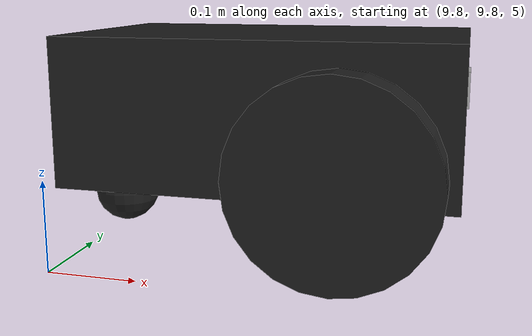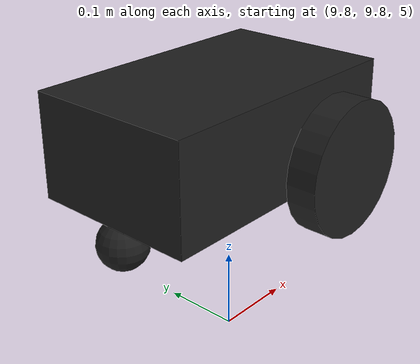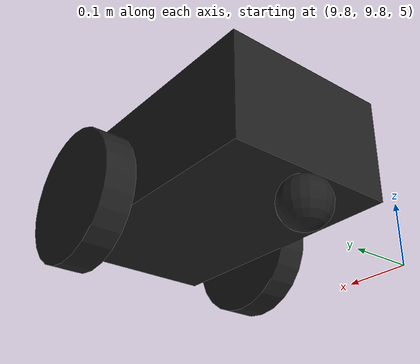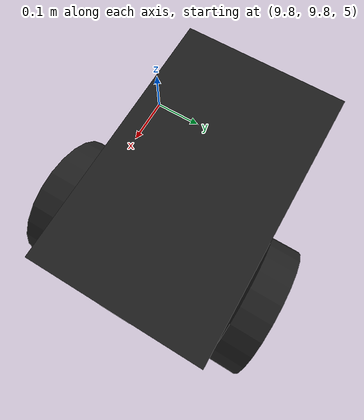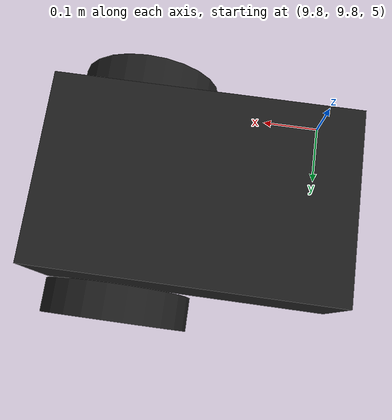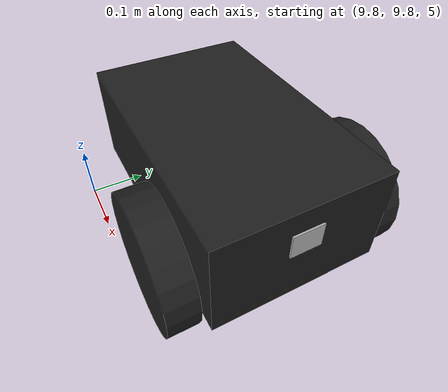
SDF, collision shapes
<?xml version="1.0" ?>
<sdf version="1.5">
  <model name="pioneer2dx">
    <link name="chassis">
      <pose>10 10 5.16 0 0 0</pose>
      <inertial>
        <mass>5.67</mass>
        <inertia>
          <ixx>0.07</ixx>
          <iyy>0.08</iyy>
          <izz>0.10</izz>
          <ixy>0</ixy>
          <ixz>0</ixz>
          <iyz>0</iyz>
        </inertia>
      </inertial>
      <collision name="collision">
        <geometry>
          <box>
            <size>0.445 0.277 0.17</size>
          </box>
        </geometry>
      </collision>
      <collision name="castor_collision">
        <pose>-0.200 0 -0.12 0 0 0</pose>
        <geometry>
          <sphere>
            <radius>0.04</radius>
          </sphere>
        </geometry>
        <surface>
          <friction>
            <ode>
              <mu>0</mu>
              <mu2>0</mu2>
              <slip1>1.0</slip1>
              <slip2>1.0</slip2>
            </ode>
          </friction>
        </surface>
      </collision>
      <visual name="visual">
        <pose>0 0 0.04 0 0 0</pose>
        <geometry>
          <mesh>
            <uri>model://pioneer2dx/meshes/chassis.dae</uri>
          </mesh>
        </geometry>
      </visual>
      <visual name="castor_visual">
        <pose>-0.200 0 -0.12 0 0 0</pose>
        <geometry>
          <sphere>
            <radius>0.04</radius>
          </sphere>
        </geometry>
        <material>
          <script>
            <uri>file://media/materials/scripts/gazebo.material</uri>
            <name>Gazebo/FlatBlack</name>
          </script>
        </material>
      </visual>
    </link>
    <link name="right_wheel">
      <pose>10.1 9.83 5.11 0 1.5707 1.5707</pose>
      <inertial>
        <mass>1.5</mass>
        <inertia>
          <ixx>0.0051</ixx>
          <iyy>0.0051</iyy>
          <izz>0.0090</izz>
          <ixy>0</ixy>
          <ixz>0</ixz>
          <iyz>0</iyz>
        </inertia>
      </inertial>
      <collision name="collision">
        <geometry>
          <cylinder>
            <radius>0.11</radius>
            <length>0.05</length>
          </cylinder>
        </geometry>
        <surface>
          <friction>
            <ode>
              <mu>100000.0</mu>
              <mu2>100000.0</mu2>
              <slip1>0.0</slip1>
              <slip2>0.0</slip2>
            </ode>
          </friction>
        </surface>
      </collision>
      <visual name="visual">
        <geometry>
          <cylinder>
            <radius>0.11</radius>
            <length>0.05</length>
          </cylinder>
        </geometry>
        <material>
          <script>
            <uri>file://media/materials/scripts/gazebo.material</uri>
            <name>Gazebo/FlatBlack</name>
          </script>
        </material>
      </visual>
    </link>
    <link name="left_wheel">
      <pose>10.1 10.17 5.11 0 1.5707 1.5707</pose>
      <inertial>
        <mass>1.5</mass>
        <inertia>
          <ixx>0.0051</ixx>
          <iyy>0.0051</iyy>
          <izz>0.0090</izz>
          <ixy>0</ixy>
          <ixz>0</ixz>
          <iyz>0</iyz>
        </inertia>
      </inertial>
      <collision name="collision">
        <geometry>
          <cylinder>
            <radius>0.11</radius>
            <length>0.05</length>
          </cylinder>
        </geometry>
        <surface>
          <friction>
            <ode>
              <mu>100000.0</mu>
              <mu2>100000.0</mu2>
              <slip1>0.0</slip1>
              <slip2>0.0</slip2>
            </ode>
          </friction>
        </surface>
      </collision>
      <visual name="visual">
        <geometry>
          <cylinder>
            <radius>0.11</radius>
            <length>0.05</length>
          </cylinder>
        </geometry>
        <material>
          <script>
            <uri>file://media/materials/scripts/gazebo.material</uri>
            <name>Gazebo/FlatBlack</name>
          </script>
        </material>
      </visual>
    </link>
    <joint type="revolute" name="left_wheel_hinge">
      <pose>10 10 4.97 0 0 0</pose>
      <child>left_wheel</child>
      <parent>chassis</parent>
      <axis>
        <xyz>0 1 0</xyz>
        <use_parent_model_frame>true</use_parent_model_frame>
      </axis>
    </joint>
    <joint type="revolute" name="right_wheel_hinge">
      <pose>10 10 5.03 0 0 0</pose>
      <child>right_wheel</child>
      <parent>chassis</parent>
      <axis>
        <xyz>0 1 0</xyz>
        <use_parent_model_frame>true</use_parent_model_frame>
      </axis>
    </joint>
    <plugin filename="libDiffDrivePlugin.so" name="diff_drive">
      <left_joint>left_wheel_hinge</left_joint>
      <right_joint>right_wheel_hinge</right_joint>
      <torque>5</torque>
    </plugin>
    <include>
      <uri>model://hokuyo</uri>
      <pose>10.2 10 5.2 0 0 0</pose>
    </include>
    <joint name="hokuyo_joint" type="fixed">
      <child>hokuyo::link</child>
      <parent>chassis</parent>
    </joint>
  </model>
</sdf>

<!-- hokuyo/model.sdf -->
<sdf version="1.5">
  <model name="hokuyo">
    <pose>0 0 0.035 0 0 0</pose>
    <link name="link">
      <inertial>
        <mass>0.1</mass>
      </inertial>
      <visual name="visual">
        <geometry>
          <mesh>
            <uri>model://../model_source/models/hokuyo/meshes/hokuyo.dae</uri>
          </mesh>
        </geometry>
      </visual>
      <collision name="collision-base">
        <pose>0 0 -0.0145 0 0 0</pose>
        <geometry>
          <box>
            <size>0.05 0.05 0.041</size>
          </box>
        </geometry>
      </collision>
      <collision name="collision-top">
        <pose>0 0 0.0205 0 0 0</pose>
        <geometry>
          <cylinder>
            <radius>0.021</radius>
            <length>0.029</length>
          </cylinder>
        </geometry>
      </collision>
      <sensor name="laser" type="ray">
        <pose>0.01 0 0.0175 0 -0 0</pose>
        <ray>
          <scan>
            <horizontal>
              <samples>640</samples>
              <resolution>1</resolution>
              <min_angle>-2.26889</min_angle>
              <max_angle>2.268899</max_angle>
            </horizontal>
          </scan>
          <range>
            <min>0.08</min>
            <max>10</max>
            <resolution>0.01</resolution>
          </range>
        </ray>
        <plugin name="laser" filename="libRayPlugin.so" />
        <always_on>1</always_on>
        <update_rate>30</update_rate>
        <visualize>true</visualize>
      </sensor>
    </link>
  </model>
</sdf>
